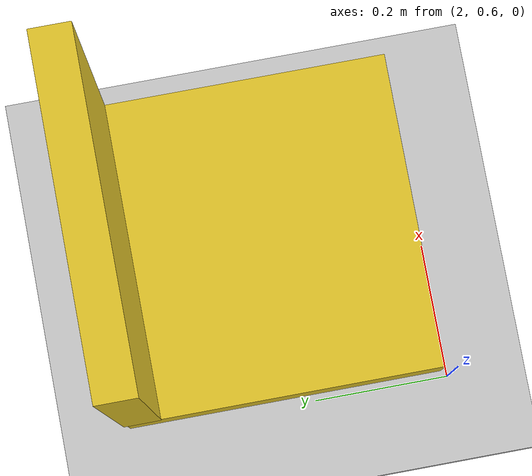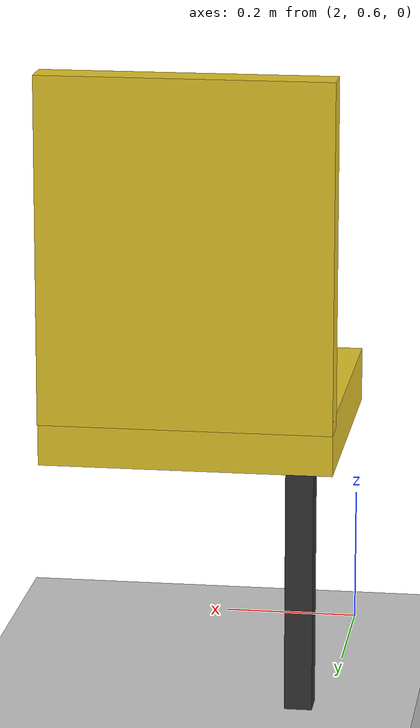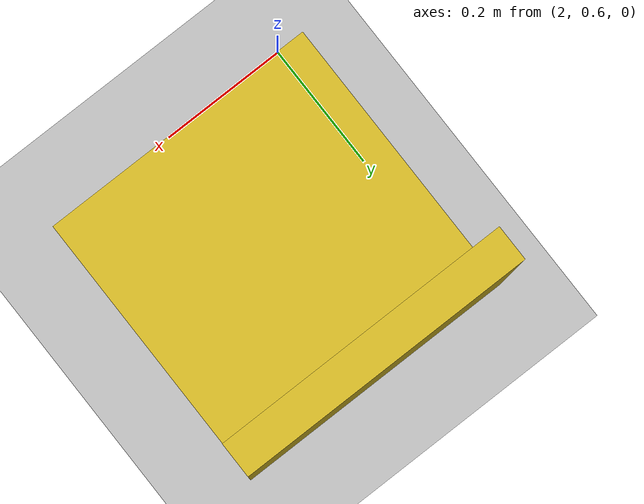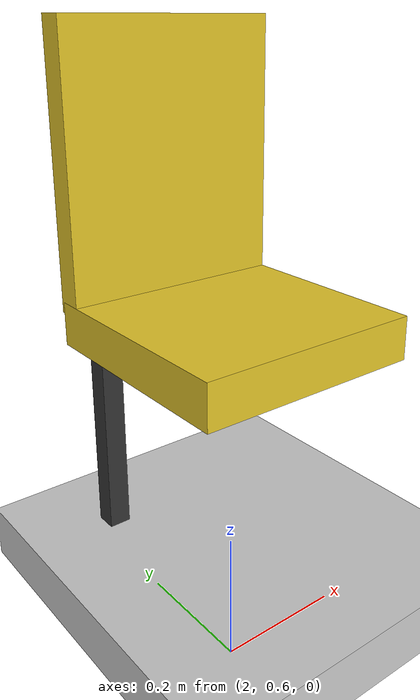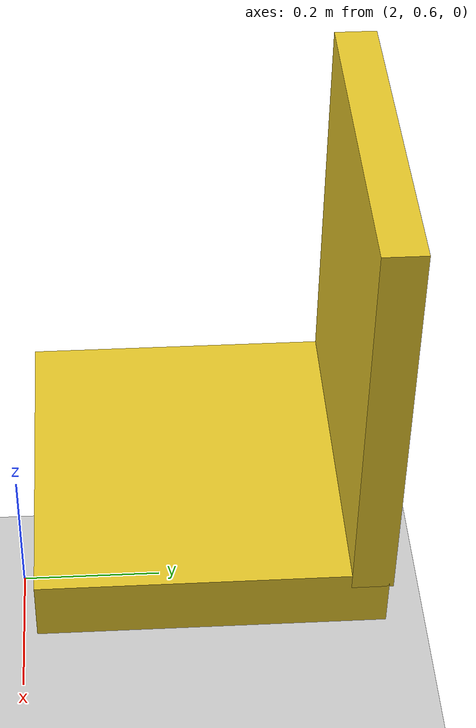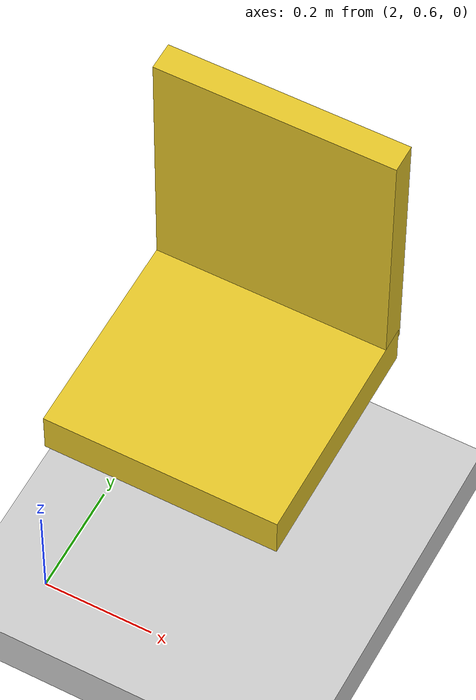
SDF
<sdf version="1.9">
 <world name="default">
  <model name="ground_plane">
   <static>true</static>
   <pose>5.05 0 -0.05 0 0 0</pose>
   <link name="body">
    <collision name="collision"><geometry><box><size>14.1 12 0.1</size></box></geometry></collision>
    <visual name="visual">
     <geometry><box><size>14.1 12 0.1</size></box></geometry>
     <material><ambient>0.8 0.8 0.8 1</ambient><diffuse>0.8 0.8 0.8 1</diffuse></material>
    </visual>
   </link>
  </model>
  <model name="chair_seat">
   <static>true</static>
   <pose>2.2 0.85 0.4 0 0 0</pose>
   <link name="body">
    <collision name="collision"><geometry><box><size>0.42 0.42 0.08</size></box></geometry></collision>
    <visual name="visual">
     <geometry><box><size>0.42 0.42 0.08</size></box></geometry>
     <material><ambient>0.9 0.78 0.16 1</ambient><diffuse>0.9 0.78 0.16 1</diffuse></material>
    </visual>
   </link>
  </model>
  <model name="chair_back">
   <static>true</static>
   <pose>2.2 1.04 0.67 0 0 0</pose>
   <link name="body">
    <collision name="collision"><geometry><box><size>0.42 0.05 0.5</size></box></geometry></collision>
    <visual name="visual">
     <geometry><box><size>0.42 0.05 0.5</size></box></geometry>
     <material><ambient>0.9 0.78 0.16 1</ambient><diffuse>0.9 0.78 0.16 1</diffuse></material>
    </visual>
   </link>
  </model>
  <model name="chair_leg_-0.16_0.16">
   <static>true</static>
   <pose>2.04 1.01 0.19 0 0 0</pose>
   <link name="body">
    <collision name="collision"><geometry><box><size>0.04 0.04 0.38</size></box></geometry></collision>
    <visual name="visual">
     <geometry><box><size>0.04 0.04 0.38</size></box></geometry>
     <material><ambient>0.2 0.2 0.2 1</ambient><diffuse>0.2 0.2 0.2 1</diffuse></material>
    </visual>
   </link>
  </model>
 </world>
</sdf>
